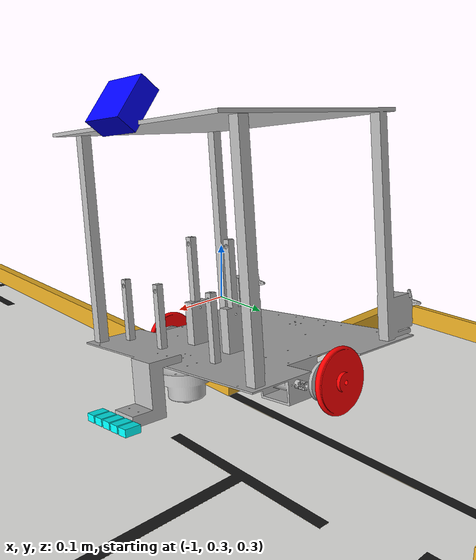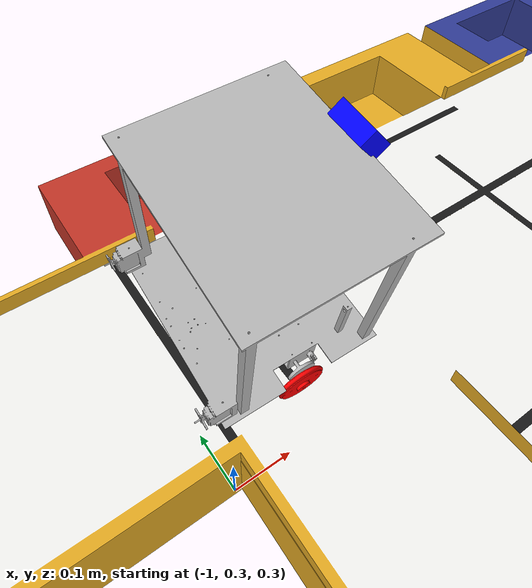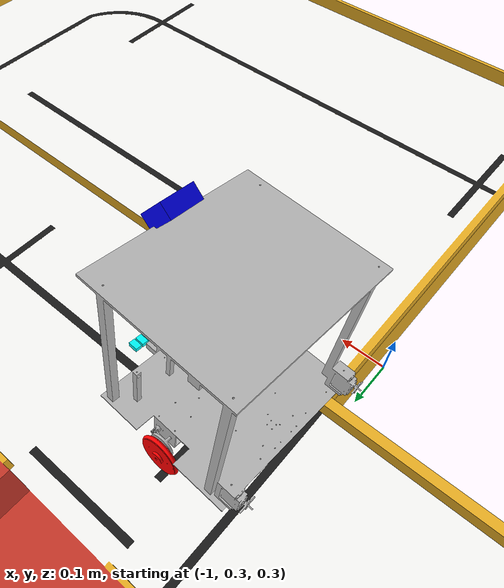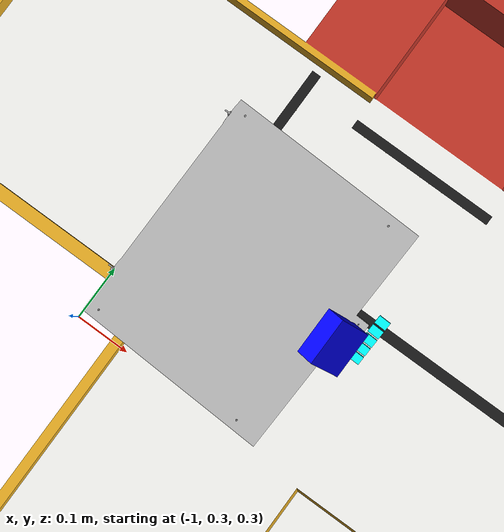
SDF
<?xml version="1.0" ?>
<sdf version="1.9">
  <world name="irc_world">

    <physics type="ode">
      <real_time_update_rate>1000.0</real_time_update_rate>
      <max_step_size>0.001</max_step_size>
      <real_time_factor>1</real_time_factor>
    </physics>
    <plugin
        filename="libignition-gazebo-physics-system.so"
        name="ignition::gazebo::systems::Physics">
    </plugin>
    <plugin
        filename="libignition-gazebo-user-commands-system.so"
        name="ignition::gazebo::systems::UserCommands">
    </plugin>
    <plugin
        filename="libignition-gazebo-scene-broadcaster-system.so"
        name="ignition::gazebo::systems::SceneBroadcaster">
    </plugin>
    <scene>
      <ambient>0.5 0.5 0.5 1</ambient>
      <background>0.7 0.7 0.7 1</background>
      <shadows>false</shadows>
    </scene>

    <light type="directional" name="sun">
      <pose>0 0 10 0 0 0</pose>
      <direction>-0.5 0.1 -0.9</direction>
      <diffuse>0.8 0.8 0.8 1</diffuse>
      <specular>0.2 0.2 0.2 1</specular>
      <attenuation>
        <range>1000</range>
        <constant>0.9</constant>
        <linear>0.01</linear>
        <quadratic>0.001</quadratic>
      </attenuation>
      <cast_shadows>false</cast_shadows>
    </light>

    <include>
      <uri>model://irc_stage</uri>
      <name>irc_stage_model</name>
      <pose>0 0 0 0 0 -1.57</pose>
    </include>

    <include>
      <uri>model://robot</uri>
      <name>robot_model</name>
      <pose>-0.8 0.9 0.4 0.043 0.15 -1.6</pose>
    </include>

  </world>
</sdf>

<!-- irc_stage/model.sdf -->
<sdf version="1.9">
  <model name="irc_stage">

    <static>true</static> <link name="link">

      <collision name="collision">
        <geometry>
          <mesh>
            <uri>model://irc_stage/meshes/irc_stage6.stl</uri>
            <scale>1 1 1</scale>
          </mesh>
        </geometry>
        <surface>
          <friction>
            <ode>
              <mu>1.0</mu> <mu2>1.0</mu2>
            </ode>
          </friction>
        </surface>
      </collision>

      <visual name="visual">
        <geometry>
          <mesh>
            <uri>model://irc_stage/meshes/irc_stage6.dae</uri>
            <scale>1 1 1</scale>
          </mesh>
        </geometry>
      </visual>

    </link>
  </model>
</sdf>

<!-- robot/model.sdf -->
<sdf version="1.9">
  <model name="my_robot">
    <static>false</static>
    <plugin filename="libignition-gazebo-sensors-system.so"
      name="ignition::gazebo::systems::Sensors">
      <render_engine>ogre2</render_engine>
    </plugin>

    <plugin
        filename="libignition-gazebo-diff-drive-system.so"
        name="ignition::gazebo::systems::DiffDrive">
        <left_joint>left_wheel_joint</left_joint>
        <right_joint>right_wheel_joint</right_joint>
        <wheel_separation>0.36</wheel_separation>
        <wheel_radius>0.04</wheel_radius>
        <odom_publish_frequency>1</odom_publish_frequency>
        <topic>/cmd_vel</topic>
    </plugin>
    <!-- Moving Forward-->
    <plugin filename="libignition-gazebo-triggered-publisher-system.so"
            name="ignition::gazebo::systems::TriggeredPublisher">
        <input type="ignition.msgs.Int32" topic="/keyboard/keypress">
            <match field="data">16777235</match>
        </input>
        <output type="ignition.msgs.Twist" topic="/cmd_vel">
            linear: {x: 0.2}, angular: {z: 0.0}
        </output>
    </plugin>
    <!-- Moving Backward-->
    <plugin filename="libignition-gazebo-triggered-publisher-system.so"
            name="ignition::gazebo::systems::TriggeredPublisher">
        <input type="ignition.msgs.Int32" topic="/keyboard/keypress">
            <match field="data">16777237</match>
        </input>
        <output type="ignition.msgs.Twist" topic="/cmd_vel">
            linear: {x: -0.2}, angular: {z: 0.0}
        </output>
    </plugin>

    <!-- Turning Right-->
    <plugin filename="libignition-gazebo-triggered-publisher-system.so"
            name="ignition::gazebo::systems::TriggeredPublisher">
        <input type="ignition.msgs.Int32" topic="/keyboard/keypress">
            <match field="data">16777236</match>
        </input>
        <output type="ignition.msgs.Twist" topic="/cmd_vel">
            linear: {x: 0.0}, angular: {z: -0.5}
        </output>
    </plugin>
    <!-- Turning Left-->
    <plugin filename="libignition-gazebo-triggered-publisher-system.so"
            name="ignition::gazebo::systems::TriggeredPublisher">
        <input type="ignition.msgs.Int32" topic="/keyboard/keypress">
            <match field="data">16777234</match>
        </input>
        <output type="ignition.msgs.Twist" topic="/cmd_vel">
            linear: {x: 0.0}, angular: {z: 0.5}
        </output>
    </plugin>

    <link name="base_link">
      <pose>0.35 0 0 0 0 0</pose>
      <inertial>
        <mass>5.1</mass>
        <inertia>
          <ixx>0.1</ixx>
          <iyy>0.1</iyy>
          <izz>0.1</izz>
          <ixy>0</ixy>
          <ixz>0</ixz>
          <iyz>0</iyz>
        </inertia>
      </inertial>

      <collision name="collision">
        <geometry>
          <mesh>
            <scale>1 1 1</scale>
            <uri>model://robot/robo.stl</uri>
          </mesh>
        </geometry>
        <surface>
          <friction>
            <ode>
              <mu>1.0</mu>
              <mu2>1.0</mu2>
            </ode>
          </friction>
        </surface>
      </collision>

      <visual name="visual">
        <geometry>
          <mesh>
            <scale>1 1 1</scale>
            <uri>model://robot/robo.dae</uri>
          </mesh>
        </geometry>
      </visual>
    </link>

    <link name='left_wheel'>
        <pose relative_to="base_link">-0.18 0 -0.027 0 3.14 0</pose>
        <inertial>
            <mass>1</mass>
            <inertia>
                <ixx>0.043333</ixx>
                <ixy>0</ixy>
                <ixz>0</ixz>
                <iyy>0.043333</iyy>
                <iyz>0</iyz>
                <izz>0.08</izz>
            </inertia>
        </inertial>

        <visual name='visual'>
            <geometry>
                <mesh>
                  <scale>1 1 1</scale>
                  <uri>model://robot/wheel.dae</uri>
                </mesh>
            </geometry>
            <material>
                <ambient>1.0 0.0 0.0 1</ambient>
                <diffuse>1.0 0.0 0.0 1</diffuse>
                <specular>1.0 0.0 0.0 1</specular>
            </material>
        </visual>
        <collision name='collision'>
            <geometry>
                <mesh>
                    <scale>1 1 1</scale>
                    <uri>model://robot/wheel.stl</uri>
                </mesh>
            </geometry>
        </collision>
    </link>
    <joint name='left_wheel_joint' type='revolute'>
        <pose relative_to='left_wheel'/>
        <parent>base_link</parent>
        <child>left_wheel</child>
        <axis>
            <xyz expressed_in='__model__'>-1 0 0</xyz> <!--can be defined as any frame or even arbitrary frames-->
            <limit>
                <lower>-1.79769e+308</lower>    <!--negative infinity-->
                <upper>1.79769e+308</upper>     <!--positive infinity-->
            </limit>
        </axis>
    </joint>

    <link name='right_wheel'>
        <pose relative_to="base_link">0.18 0 -0.027 0 0 0</pose> <!--angles are in radian-->
        <inertial>
            <mass>1</mass>
            <inertia>
                <ixx>0.043333</ixx>
                <ixy>0</ixy>
                <ixz>0</ixz>
                <iyy>0.043333</iyy>
                <iyz>0</iyz>
                <izz>0.08</izz>
            </inertia>
        </inertial>
        <visual name='visual'>
            <geometry>
                <mesh>
                    <scale>1 1 1</scale>
                    <uri>model://robot/wheel.dae</uri>
                </mesh>
            </geometry>
            <material>
                <ambient>1.0 0.0 0.0 1</ambient>
                <diffuse>1.0 0.0 0.0 1</diffuse>
                <specular>1.0 0.0 0.0 1</specular>
            </material>
        </visual>
        <collision name='collision'>
            <geometry>
                <mesh>
                    <scale>1 1 1</scale>
                    <uri>model://robot/wheel.stl</uri>
                </mesh>
            </geometry>
        </collision>
    </link>
    <joint name='right_wheel_joint' type='revolute'>
        <pose relative_to='right_wheel'/>
        <parent>base_link</parent>
        <child>right_wheel</child>
        <axis>
            <xyz expressed_in='__model__'>-1 0 0</xyz>
            <limit>
                <lower>-1.79769e+308</lower>    <!--negative infinity-->
                <upper>1.79769e+308</upper>     <!--positive infinity-->
            </limit>
        </axis>
    </joint>

    <link name="camera_link">
      <pose relative_to='__model__'>0.35 0.17 0.325 0 0.9 1.6</pose>
      <!--車輪間同士の距離がx軸、奥ゆきがy軸、ピッチがカメラをどのくらい下に向けるかを表している   -->
      <inertial>
        <mass>0.01</mass>
        <inertia>
          <ixx>0.0001</ixx>
          <iyy>0.0001</iyy>
          <izz>0.0001</izz>
          <ixy>0</ixy>
          <ixz>0</ixz>
          <iyz>0</iyz>
        </inertia>
      </inertial>
      <visual name="camera_visual">
        <geometry>
          <box><size>0.063 0.07 0.03</size></box>
        </geometry>
        <material>
          <diffuse>0 0 1 1</diffuse>
          <ambient>0 0 1 1</ambient>
        </material>
      </visual>
      <sensor name="camera_sensor" type="camera">
        <camera>
	        <camera_info_topic>camera_info</camera_info_topic>
          <horizontal_fov>1.047</horizontal_fov>
          <image>
            <width>640</width>
            <height>480</height>
            <format>R8G8B8</format>
          </image>
          <clip>
            <near>0.1</near>
            <far>100</far>
          </clip>
        </camera>
        <topic>/camera_sensor</topic>
        <always_on>1</always_on>
        <update_rate>30</update_rate>
        <visualize>true</visualize>
      </sensor>
    </link>

    <joint name="camera_joint" type="fixed">
      <parent>base_link</parent>
      <child>camera_link</child>
    </joint>

    <link name="line_left_left_link">
      <pose relative_to="base_link">-0.036 0.22 -0.057 0 0 0</pose>
      <inertial>
        <mass>0.001</mass>
        <inertia><ixx>1e-6</ixx><iyy>1e-6</iyy><izz>1e-6</izz><ixy>0</ixy><ixz>0</ixz><iyz>0</iyz></inertia>
      </inertial>
      <visual name="visual">
        <geometry><box><size>0.015 0.022 0.01</size></box></geometry>
        <material>
          <diffuse>0.0 1.0 1.0 1.0</diffuse><ambient>0.0 1.0 1.0 1.0</ambient>
        </material>
      </visual>
      <sensor name="line_left_left" type="camera">
        <pose>0 0 0 0 1.57 0</pose>
        <camera>
          <horizontal_fov>0.5</horizontal_fov>
          <image><width>2</width><height>2</height><format>R8G8B8</format></image>
          <clip><near>0.01</near><far>0.2</far></clip>
        </camera>
        <always_on>1</always_on>
        <update_rate>30</update_rate>
        <topic>/line/left_left</topic>
        <visualize>true</visualize>
      </sensor>
    </link>
    <joint name="line_left_left_joint" type="fixed">
      <parent>base_link</parent>
      <child>line_left_left_link</child>
    </joint>

    <link name="line_left_link">
      <pose relative_to="base_link">-0.018 0.22 -0.057 0 0 0</pose>
      <inertial>
        <mass>0.001</mass>
        <inertia>
          <ixx>1e-6</ixx><iyy>1e-6</iyy><izz>1e-6</izz><ixy>0</ixy><ixz>0</ixz><iyz>0</iyz>
        </inertia>
      </inertial>

      <visual name="visual">
        <geometry>
          <box><size>0.015 0.022 0.01</size></box>
        </geometry>
        <material>
          <diffuse>0.0 1.0 1.0 1.0</diffuse>
          <ambient>0.0 1.0 1.0 1.0</ambient>
        </material>
      </visual>

      <sensor name="line_left" type="camera">
        <pose>0 0 0 0 1.57 0</pose>
        <camera>
          <horizontal_fov>0.5</horizontal_fov>
          <image>
            <width>2</width>
            <height>2</height>
            <format>R8G8B8</format>
          </image>
          <clip>
            <near>0.01</near>
            <far>0.2</far>
          </clip>
        </camera>
        <always_on>1</always_on>
        <update_rate>30</update_rate>
        <topic>/line/left</topic>
        <visualize>true</visualize>
      </sensor>
    </link>

    <joint name="line_left_joint" type="fixed">
      <parent>base_link</parent>
      <child>line_left_link</child>
    </joint>

    <link name="line_center_link">
      <pose relative_to="base_link">0 0.22 -0.057 0 0 0</pose>
      <inertial>
        <mass>0.001</mass>
        <inertia><ixx>1e-6</ixx><iyy>1e-6</iyy><izz>1e-6</izz><ixy>0</ixy><ixz>0</ixz><iyz>0</iyz></inertia>
      </inertial>

      <visual name="visual">
        <geometry><box><size>0.015 0.022 0.01</size></box></geometry>
        <material>
          <diffuse>0.0 1.0 1.0 1.0</diffuse><ambient>0.0 1.0 1.0 1.0</ambient>
        </material>
      </visual>

      <sensor name="line_center" type="camera">
        <pose>0 0 0 0 1.57 0</pose>
        <camera>
          <horizontal_fov>0.5</horizontal_fov>
          <image><width>2</width><height>2</height><format>R8G8B8</format></image>
          <clip><near>0.01</near><far>0.2</far></clip>
        </camera>
        <always_on>1</always_on>
        <update_rate>30</update_rate>
        <topic>/line/center</topic>
        <visualize>true</visualize>
      </sensor>
    </link>

    <joint name="line_center_joint" type="fixed">
      <parent>base_link</parent>
      <child>line_center_link</child>
    </joint>

    <link name="line_right_link">
      <pose relative_to="base_link">0.018 0.22 -0.057 0 0 0</pose>
      <inertial>
        <mass>0.001</mass>
        <inertia><ixx>1e-6</ixx><iyy>1e-6</iyy><izz>1e-6</izz><ixy>0</ixy><ixz>0</ixz><iyz>0</iyz></inertia>
      </inertial>

      <visual name="visual">
        <geometry><box><size>0.015 0.022 0.01</size></box></geometry>
        <material>
          <diffuse>0.0 1.0 1.0 1.0</diffuse><ambient>0.0 1.0 1.0 1.0</ambient>
        </material>
      </visual>

      <sensor name="line_right" type="camera">
        <pose>0 0 0 0 1.57 0</pose>
        <camera>
          <horizontal_fov>0.5</horizontal_fov>
          <image><width>2</width><height>2</height><format>R8G8B8</format></image>
          <clip><near>0.01</near><far>0.2</far></clip>
        </camera>
        <always_on>1</always_on>
        <update_rate>30</update_rate>
        <topic>/line/right</topic>
        <visualize>true</visualize>
      </sensor>
    </link>

    <joint name="line_right_joint" type="fixed">
      <parent>base_link</parent>
      <child>line_right_link</child>
    </joint>

    <link name="line_right_right_link">
      <pose relative_to="base_link">0.036 0.22 -0.057 0 0 0</pose>
      <inertial>
        <mass>0.001</mass>
        <inertia><ixx>1e-6</ixx><iyy>1e-6</iyy><izz>1e-6</izz><ixy>0</ixy><ixz>0</ixz><iyz>0</iyz></inertia>
      </inertial>
      <visual name="visual">
        <geometry><box><size>0.015 0.022 0.01</size></box></geometry>
        <material>
          <diffuse>0.0 1.0 1.0 1.0</diffuse><ambient>0.0 1.0 1.0 1.0</ambient>
        </material>
      </visual>
      <sensor name="line_right_right" type="camera">
        <pose>0 0 0 0 1.57 0</pose>
        <camera>
          <horizontal_fov>0.5</horizontal_fov>
          <image><width>2</width><height>2</height><format>R8G8B8</format></image>
          <clip><near>0.01</near><far>0.2</far></clip>
        </camera>
        <always_on>1</always_on>
        <update_rate>30</update_rate>
        <topic>/line/right_right</topic>
        <visualize>true</visualize>
      </sensor>
    </link>
    <joint name="line_right_right_joint" type="fixed">
      <parent>base_link</parent>
      <child>line_right_right_link</child>
    </joint>

  </model>
</sdf>
